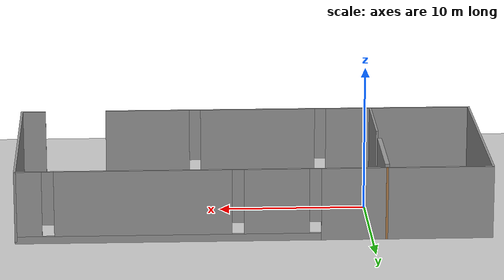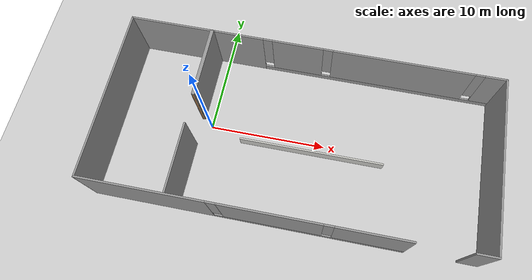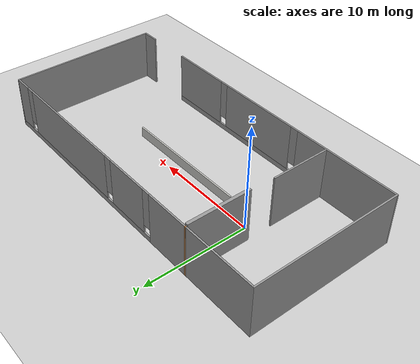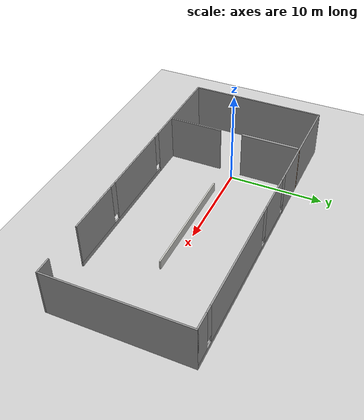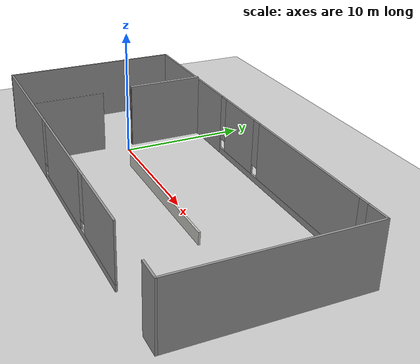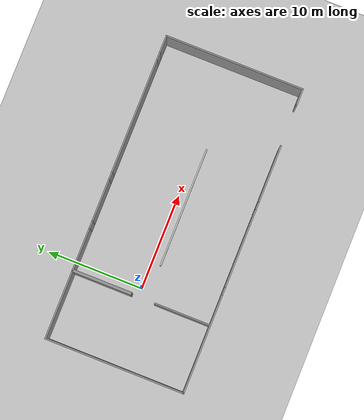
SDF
<sdf version="1.7">
 <world name="default">
  <light name="sun" type="directional">
   <pose>0 0 10 0 -0 0</pose>
   <diffuse>0.8 0.8 0.8 1</diffuse>
   <specular>0.2 0.2 0.2 1</specular>
   <attenuation>
    <range>1000</range>
    <constant>0.9</constant>
    <linear>0.01</linear>
    <quadratic>0.001</quadratic>
   </attenuation>
   <direction>-0.5 0.1 -0.9</direction>
   <spot><inner_angle>0</inner_angle><outer_angle>0</outer_angle><falloff>0</falloff></spot>
  </light>
  <model name="ground_plane">
   <static>1</static>
   <link name="link">
    <collision name="collision">
     <geometry><plane><normal>0 0 1</normal><size>100 100</size></plane></geometry>
     <surface><friction><ode><mu>100</mu><mu2>50</mu2></ode></friction></surface>
    </collision>
    <visual name="visual">
     <cast_shadows>0</cast_shadows>
     <geometry><plane><normal>0 0 1</normal><size>100 100</size></plane></geometry>
     <material>
      <script><uri>file://media/materials/scripts/gazebo.material</uri><name>Gazebo/Grey</name></script>
     </material>
    </visual>
   </link>
  </model>
  <gravity>0 0 -9.8</gravity>
  <magnetic_field>6e-06 2.3e-05 -4.2e-05</magnetic_field>
  <atmosphere type="adiabatic"/>
  <physics type="ode">
   <max_step_size>0.001</max_step_size>
   <real_time_factor>1</real_time_factor>
   <real_time_update_rate>1000</real_time_update_rate>
  </physics>
  <scene><ambient>0.4 0.4 0.4 1</ambient><background>0.7 0.7 0.7 1</background><shadows>1</shadows></scene>
  <audio><device>default</device></audio>
  <spherical_coordinates>
   <surface_model>EARTH_WGS84</surface_model>
   <latitude_deg>0</latitude_deg>
   <longitude_deg>0</longitude_deg>
   <elevation>0</elevation>
   <heading_deg>0</heading_deg>
  </spherical_coordinates>
  <model name="MAP">
   <pose>7.876 -0.3835 0 0 -0 0</pose>
   <link name="Wall_0">
    <collision name="Wall_0_Collision">
     <geometry><box><size>14.54 0.15 5</size></box></geometry>
     <pose>0 0 2.5 0 -0 0</pose>
    </collision>
    <visual name="Wall_0_Visual">
     <pose>0 0 2.5 0 -0 0</pose>
     <geometry><box><size>14.54 0.15 5</size></box></geometry>
     <material>
      <script><uri>file://media/materials/scripts/gazebo.material</uri><name>Gazebo/Grey</name></script>
      <ambient>1 1 1 1</ambient>
     </material>
     <meta><layer>0</layer></meta>
    </visual>
    <pose>-15.925 -0.0025 0 0 -0 1.5708</pose>
   </link>
   <link name="Wall_10">
    <collision name="Wall_10_Collision">
     <geometry><box><size>12.5 0.15 1</size></box></geometry>
     <pose>0 0 0.5 0 -0 0</pose>
    </collision>
    <visual name="Wall_10_Visual">
     <pose>0 0 0.5 0 -0 0</pose>
     <geometry><box><size>12.5 0.15 1</size></box></geometry>
     <material>
      <script><uri>file://media/materials/scripts/gazebo.material</uri><name>Gazebo/CeilingTiled</name></script>
      <ambient>1 1 1 1</ambient>
     </material>
     <meta><layer>0</layer></meta>
    </visual>
    <pose>1.159 -0.4835 0 0 -0 0</pose>
   </link>
   <link name="Wall_12">
    <collision name="Wall_12_Collision">
     <geometry><box><size>6.25 0.15 5</size></box></geometry>
     <pose>0 0 2.5 0 -0 0</pose>
    </collision>
    <visual name="Wall_12_Visual">
     <pose>0 0 2.5 0 -0 0</pose>
     <geometry><box><size>6.25 0.15 5</size></box></geometry>
     <material>
      <script><uri>file://media/materials/scripts/gazebo.material</uri><name>Gazebo/Wood</name></script>
      <ambient>0.760784 0.662745 0.627451 1</ambient>
     </material>
     <meta><layer>0</layer></meta>
    </visual>
    <pose>-8.847 4.1475 0 0 -0 -1.5708</pose>
   </link>
   <link name="Wall_14">
    <collision name="Wall_14_Collision">
     <geometry><box><size>5.75 0.15 5</size></box></geometry>
     <pose>0 0 2.5 0 -0 0</pose>
    </collision>
    <visual name="Wall_14_Visual">
     <pose>0 0 2.5 0 -0 0</pose>
     <geometry><box><size>5.75 0.15 5</size></box></geometry>
     <material>
      <script><uri>file://media/materials/scripts/gazebo.material</uri><name>Gazebo/Grey</name></script>
      <ambient>1 1 1 1</ambient>
     </material>
     <meta><layer>0</layer></meta>
    </visual>
    <pose>-8.877 -4.2555 0 0 -0 1.5708</pose>
   </link>
   <link name="Wall_2">
    <pose>-3 -7.1975 0 0 -0 0</pose>
    <visual name="Wall_2_Visual_0">
     <pose>-7.85013 0 2.5 0 -0 0</pose>
     <geometry><box><size>10.2997 0.15 5</size></box></geometry>
     <material>
      <script><uri>file://media/materials/scripts/gazebo.material</uri><name>Gazebo/Grey</name></script>
      <ambient>1 1 1 1</ambient>
     </material>
     <meta><layer>0</layer></meta>
    </visual>
    <collision name="Wall_2_Collision_0">
     <geometry><box><size>10.2997 0.15 5</size></box></geometry>
     <pose>-7.85013 0 2.5 0 -0 0</pose>
    </collision>
    <visual name="Wall_2_Visual_1">
     <pose>5.14987 0 0.25 0 -0 0</pose>
     <geometry><box><size>15.7003 0.15 0.5</size></box></geometry>
     <material>
      <script><uri>file://media/materials/scripts/gazebo.material</uri><name>Gazebo/Grey</name></script>
      <ambient>1 1 1 1</ambient>
     </material>
     <meta><layer>0</layer></meta>
    </visual>
    <collision name="Wall_2_Collision_1">
     <geometry><box><size>15.7003 0.15 0.5</size></box></geometry>
     <pose>5.14987 0 0.25 0 -0 0</pose>
    </collision>
    <visual name="Wall_2_Visual_2">
     <pose>2.17393 0 2.75 0 -0 0</pose>
     <geometry><box><size>8.14839 0.15 4.5</size></box></geometry>
     <material>
      <script><uri>file://media/materials/scripts/gazebo.material</uri><name>Gazebo/Grey</name></script>
      <ambient>1 1 1 1</ambient>
     </material>
     <meta><layer>0</layer></meta>
    </visual>
    <collision name="Wall_2_Collision_2">
     <geometry><box><size>8.14839 0.15 4.5</size></box></geometry>
     <pose>2.17393 0 2.75 0 -0 0</pose>
    </collision>
    <visual name="Wall_2_Visual_3">
     <pose>10.0241 0 2.75 0 -0 0</pose>
     <geometry><box><size>5.95188 0.15 4.5</size></box></geometry>
     <material>
      <script><uri>file://media/materials/scripts/gazebo.material</uri><name>Gazebo/Grey</name></script>
      <ambient>1 1 1 1</ambient>
     </material>
     <meta><layer>0</layer></meta>
    </visual>
    <collision name="Wall_2_Collision_3">
     <geometry><box><size>5.95188 0.15 4.5</size></box></geometry>
     <pose>10.0241 0 2.75 0 -0 0</pose>
    </collision>
    <visual name="Wall_2_Visual_4">
     <pose>-2.30027 0 3.15 0 -0 0</pose>
     <geometry><box><size>0.8 0.15 3.7</size></box></geometry>
     <material>
      <script><uri>file://media/materials/scripts/gazebo.material</uri><name>Gazebo/Grey</name></script>
      <ambient>1 1 1 1</ambient>
     </material>
     <meta><layer>0</layer></meta>
    </visual>
    <collision name="Wall_2_Collision_4">
     <geometry><box><size>0.8 0.15 3.7</size></box></geometry>
     <pose>-2.30027 0 3.15 0 -0 0</pose>
    </collision>
    <visual name="Wall_2_Visual_5">
     <pose>6.64812 0 3.15 0 -0 0</pose>
     <geometry><box><size>0.8 0.15 3.7</size></box></geometry>
     <material>
      <script><uri>file://media/materials/scripts/gazebo.material</uri><name>Gazebo/Grey</name></script>
      <ambient>1 1 1 1</ambient>
     </material>
     <meta><layer>0</layer></meta>
    </visual>
    <collision name="Wall_2_Collision_5">
     <geometry><box><size>0.8 0.15 3.7</size></box></geometry>
     <pose>6.64812 0 3.15 0 -0 0</pose>
    </collision>
   </link>
   <link name="Wall_4">
    <pose>-0 7.1925 0 0 -0 0</pose>
    <visual name="Wall_4_Visual_0">
     <pose>-10.2281 0 2.5 0 -0 0</pose>
     <geometry><box><size>11.5438 0.15 5</size></box></geometry>
     <material>
      <script><uri>file://media/materials/scripts/gazebo.material</uri><name>Gazebo/Grey</name></script>
      <ambient>1 1 1 1</ambient>
     </material>
     <meta><layer>0</layer></meta>
    </visual>
    <collision name="Wall_4_Collision_0">
     <geometry><box><size>11.5438 0.15 5</size></box></geometry>
     <pose>-10.2281 0 2.5 0 -0 0</pose>
    </collision>
    <visual name="Wall_4_Visual_1">
     <pose>5.77188 0 0.25 0 -0 0</pose>
     <geometry><box><size>20.4562 0.15 0.5</size></box></geometry>
     <material>
      <script><uri>file://media/materials/scripts/gazebo.material</uri><name>Gazebo/Grey</name></script>
      <ambient>1 1 1 1</ambient>
     </material>
     <meta><layer>0</layer></meta>
    </visual>
    <collision name="Wall_4_Collision_1">
     <geometry><box><size>20.4562 0.15 0.5</size></box></geometry>
     <pose>5.77188 0 0.25 0 -0 0</pose>
    </collision>
    <visual name="Wall_4_Visual_2">
     <pose>-1.46805 0 2.75 0 -0 0</pose>
     <geometry><box><size>4.37637 0.15 4.5</size></box></geometry>
     <material>
      <script><uri>file://media/materials/scripts/gazebo.material</uri><name>Gazebo/Grey</name></script>
      <ambient>1 1 1 1</ambient>
     </material>
     <meta><layer>0</layer></meta>
    </visual>
    <collision name="Wall_4_Collision_2">
     <geometry><box><size>4.37637 0.15 4.5</size></box></geometry>
     <pose>-1.46805 0 2.75 0 -0 0</pose>
    </collision>
    <visual name="Wall_4_Visual_3">
     <pose>7.44011 0 2.75 0 -0 0</pose>
     <geometry><box><size>11.84 0.15 4.5</size></box></geometry>
     <material>
      <script><uri>file://media/materials/scripts/gazebo.material</uri><name>Gazebo/Grey</name></script>
      <ambient>1 1 1 1</ambient>
     </material>
     <meta><layer>0</layer></meta>
    </visual>
    <collision name="Wall_4_Collision_3">
     <geometry><box><size>11.84 0.15 4.5</size></box></geometry>
     <pose>7.44011 0 2.75 0 -0 0</pose>
    </collision>
    <visual name="Wall_4_Visual_4">
     <pose>15.08 0 2.75 0 -0 0</pose>
     <geometry><box><size>1.8399 0.15 4.5</size></box></geometry>
     <material>
      <script><uri>file://media/materials/scripts/gazebo.material</uri><name>Gazebo/Grey</name></script>
      <ambient>1 1 1 1</ambient>
     </material>
     <meta><layer>0</layer></meta>
    </visual>
    <collision name="Wall_4_Collision_4">
     <geometry><box><size>1.8399 0.15 4.5</size></box></geometry>
     <pose>15.08 0 2.75 0 -0 0</pose>
    </collision>
    <visual name="Wall_4_Visual_5">
     <pose>-4.05624 0 3.15 0 -0 0</pose>
     <geometry><box><size>0.8 0.15 3.7</size></box></geometry>
     <material>
      <script><uri>file://media/materials/scripts/gazebo.material</uri><name>Gazebo/Grey</name></script>
      <ambient>1 1 1 1</ambient>
     </material>
     <meta><layer>0</layer></meta>
    </visual>
    <collision name="Wall_4_Collision_5">
     <geometry><box><size>0.8 0.15 3.7</size></box></geometry>
     <pose>-4.05624 0 3.15 0 -0 0</pose>
    </collision>
    <visual name="Wall_4_Visual_6">
     <pose>1.12013 0 3.15 0 -0 0</pose>
     <geometry><box><size>0.8 0.15 3.7</size></box></geometry>
     <material>
      <script><uri>file://media/materials/scripts/gazebo.material</uri><name>Gazebo/Grey</name></script>
      <ambient>1 1 1 1</ambient>
     </material>
     <meta><layer>0</layer></meta>
    </visual>
    <collision name="Wall_4_Collision_6">
     <geometry><box><size>0.8 0.15 3.7</size></box></geometry>
     <pose>1.12013 0 3.15 0 -0 0</pose>
    </collision>
    <visual name="Wall_4_Visual_7">
     <pose>13.7601 0 3.15 0 -0 0</pose>
     <geometry><box><size>0.8 0.15 3.7</size></box></geometry>
     <material>
      <script><uri>file://media/materials/scripts/gazebo.material</uri><name>Gazebo/Grey</name></script>
      <ambient>1 1 1 1</ambient>
     </material>
     <meta><layer>0</layer></meta>
    </visual>
    <collision name="Wall_4_Collision_7">
     <geometry><box><size>0.8 0.15 3.7</size></box></geometry>
     <pose>13.7601 0 3.15 0 -0 0</pose>
    </collision>
   </link>
   <link name="Wall_6">
    <collision name="Wall_6_Collision">
     <geometry><box><size>14.5 0.15 5</size></box></geometry>
     <pose>0 0 2.5 0 -0 0</pose>
    </collision>
    <visual name="Wall_6_Visual">
     <pose>0 0 2.5 0 -0 0</pose>
     <geometry><box><size>14.5 0.15 5</size></box></geometry>
     <material>
      <script><uri>file://media/materials/scripts/gazebo.material</uri><name>Gazebo/Grey</name></script>
      <ambient>1 1 1 1</ambient>
     </material>
     <meta><layer>0</layer></meta>
    </visual>
    <pose>15.925 0.0175 0 0 -0 -1.5708</pose>
   </link>
   <link name="Wall_8">
    <collision name="Wall_8_Collision">
     <geometry><box><size>1.75 0.15 5</size></box></geometry>
     <pose>0 0 2.5 0 -0 0</pose>
    </collision>
    <visual name="Wall_8_Visual">
     <pose>0 0 2.5 0 -0 0</pose>
     <geometry><box><size>1.75 0.15 5</size></box></geometry>
     <material>
      <script><uri>file://media/materials/scripts/gazebo.material</uri><name>Gazebo/Grey</name></script>
      <ambient>1 1 1 1</ambient>
     </material>
     <meta><layer>0</layer></meta>
    </visual>
    <pose>15.125 -7.1575 0 0 -0 3.14159</pose>
   </link>
   <static>1</static>
  </model>
  <model name="MAP_0">
   <pose>-0.554 3.37 0 0 -0 0</pose>
   <link name="Wall_20">
    <collision name="Wall_20_Collision">
     <geometry><box><size>6.096 0.3 5.2</size></box></geometry>
     <pose>0 0 2.6 0 -0 0</pose>
    </collision>
    <visual name="Wall_20_Visual">
     <pose>0 0 2.6 0 -0 0</pose>
     <geometry><box><size>6.096 0.3 5.2</size></box></geometry>
     <material>
      <script><uri>file://media/materials/scripts/gazebo.material</uri><name>Gazebo/Grey</name></script>
      <ambient>1 1 1 1</ambient>
     </material>
     <meta><layer>0</layer></meta>
    </visual>
    <pose>-0.404 0.322 0 0 -0 1.5708</pose>
   </link>
   <static>1</static>
  </model>
 </world>
</sdf>
